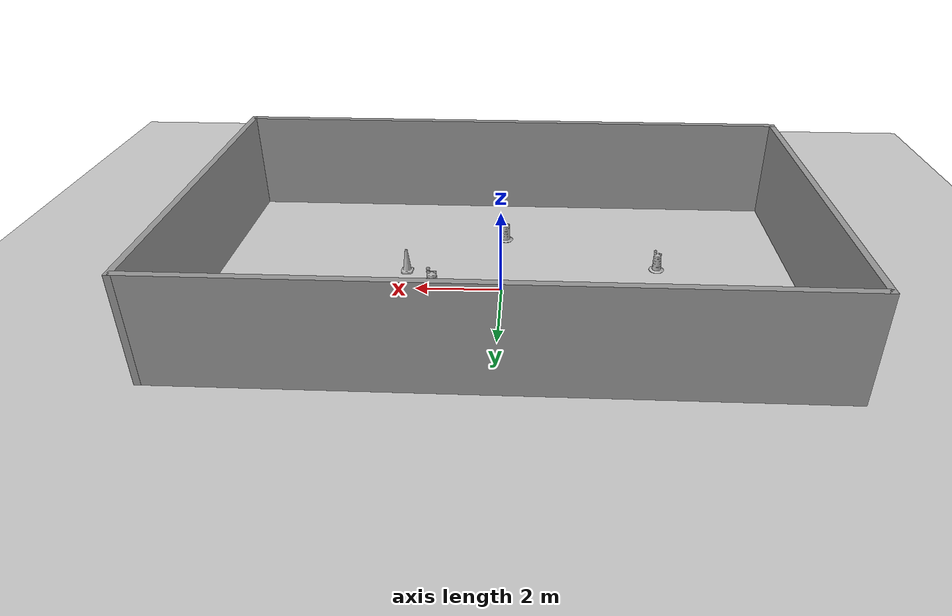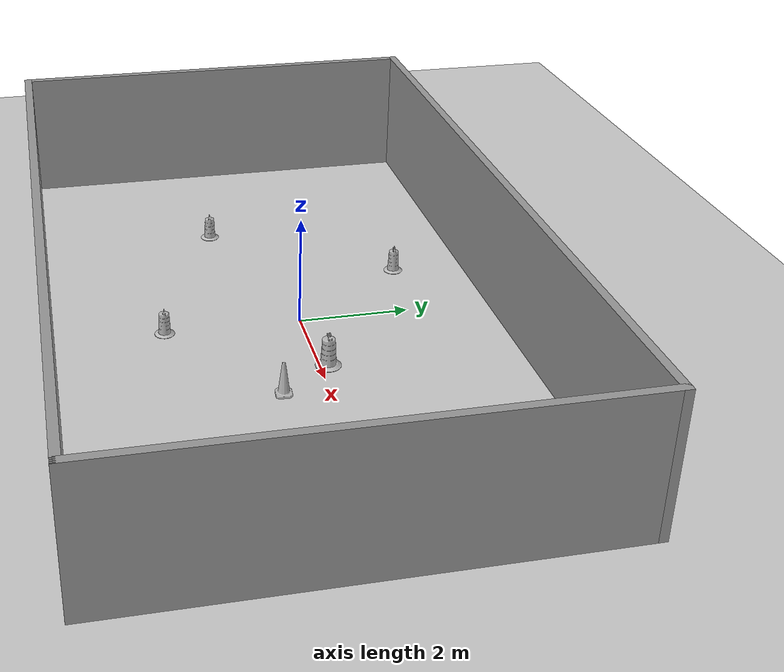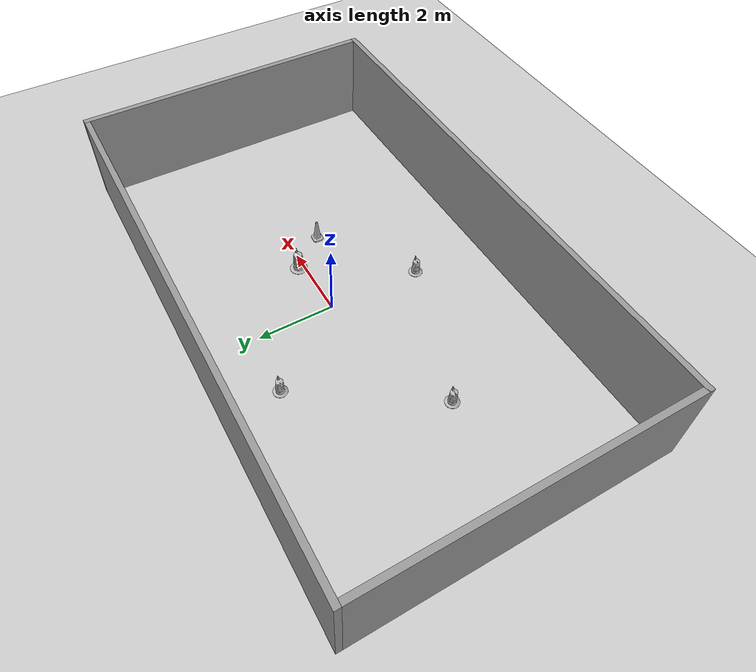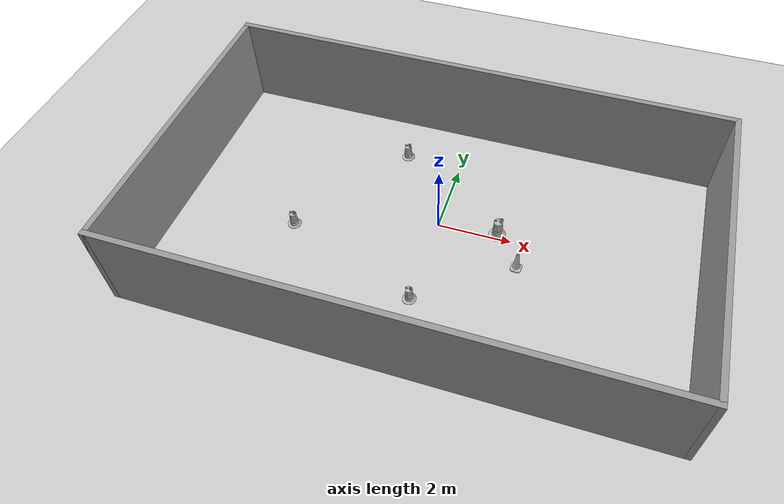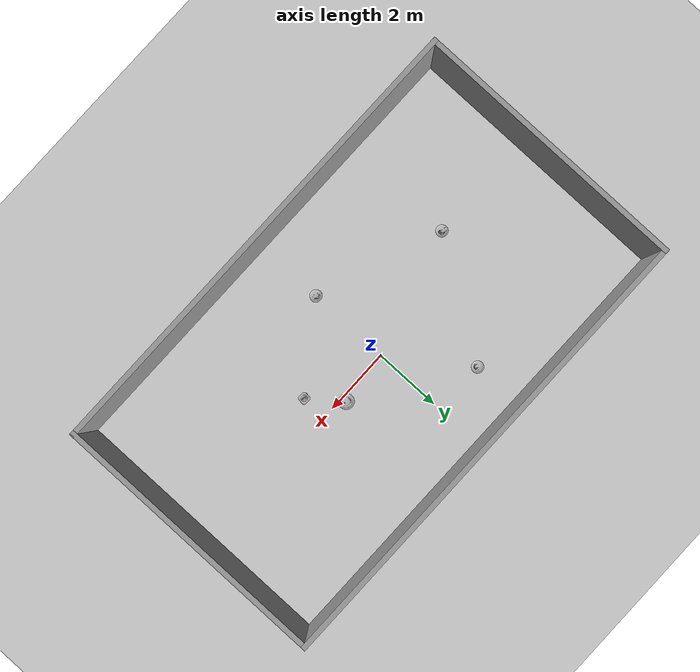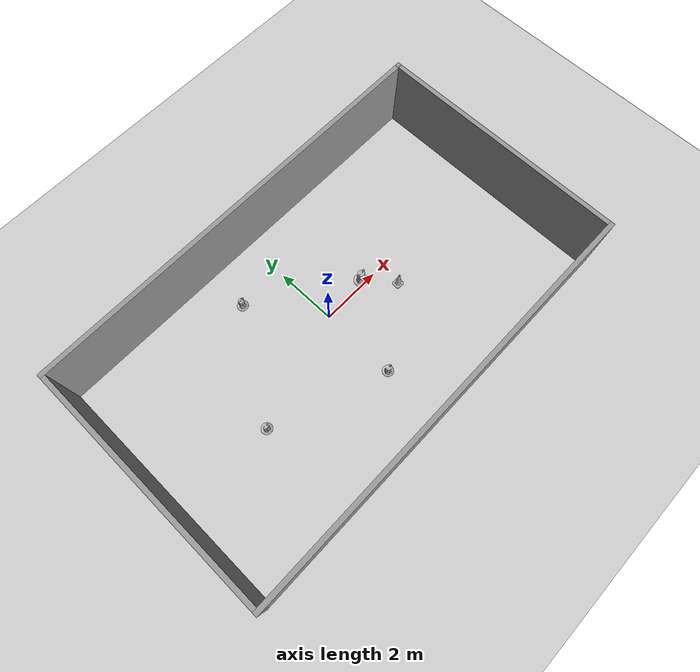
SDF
<sdf version="1.7">
 <world name="default">
  <light name="sun" type="directional">
   <pose>0 0 10 0 -0 0</pose>
   <diffuse>0.8 0.8 0.8 1</diffuse>
   <specular>0.2 0.2 0.2 1</specular>
   <attenuation>
    <range>1000</range>
    <constant>0.9</constant>
    <linear>0.01</linear>
    <quadratic>0.001</quadratic>
   </attenuation>
   <direction>-0.5 0.1 -0.9</direction>
   <spot><inner_angle>0</inner_angle><outer_angle>0</outer_angle><falloff>0</falloff></spot>
  </light>
  <model name="ground_plane">
   <static>1</static>
   <link name="link">
    <collision name="collision">
     <geometry><plane><normal>0 0 1</normal><size>100 100</size></plane></geometry>
     <surface><friction><ode><mu>100</mu><mu2>50</mu2></ode></friction></surface>
    </collision>
    <visual name="visual">
     <cast_shadows>0</cast_shadows>
     <geometry><plane><normal>0 0 1</normal><size>100 100</size></plane></geometry>
     <material>
      <script><uri>file://media/materials/scripts/gazebo.material</uri><name>Gazebo/Grey</name></script>
     </material>
    </visual>
   </link>
  </model>
  <gravity>0 0 -9.8</gravity>
  <magnetic_field>6e-06 2.3e-05 -4.2e-05</magnetic_field>
  <atmosphere type="adiabatic"/>
  <physics type="ode">
   <max_step_size>0.001</max_step_size>
   <real_time_factor>1</real_time_factor>
   <real_time_update_rate>1000</real_time_update_rate>
  </physics>
  <scene><ambient>0.4 0.4 0.4 1</ambient><background>0.7 0.7 0.7 1</background><shadows>1</shadows></scene>
  <spherical_coordinates>
   <surface_model>EARTH_WGS84</surface_model>
   <latitude_deg>0</latitude_deg>
   <longitude_deg>0</longitude_deg>
   <elevation>0</elevation>
   <heading_deg>0</heading_deg>
  </spherical_coordinates>
  <model name="Construction Barrel">
   <link name="link">
    <inertial>
     <pose>0 0 0.4 0 -0 0</pose>
     <mass>500</mass>
     <inertia><ixx>51.2096</ixx><iyy>51.2096</iyy><izz>25</izz><ixy>0</ixy><ixz>0</ixz><iyz>0</iyz></inertia>
    </inertial>
    <collision name="collision">
     <geometry>
      <mesh>
       <uri>model://construction_barrel/meshes/construction_barrel.dae</uri>
       <scale>0.445151 0.445151 0.445151</scale>
      </mesh>
     </geometry>
    </collision>
    <visual name="visual">
     <geometry>
      <mesh>
       <uri>model://construction_barrel/meshes/construction_barrel.dae</uri>
       <scale>0.445151 0.445151 0.445151</scale>
      </mesh>
     </geometry>
    </visual>
   </link>
   <pose>1.58653 0.150528 -0 -4e-06 -2e-06 1.2e-05</pose>
  </model>
  <model name="Construction Barrel_0">
   <link name="link">
    <inertial>
     <pose>0 0 0.4 0 -0 0</pose>
     <mass>500</mass>
     <inertia><ixx>51.2096</ixx><iyy>51.2096</iyy><izz>25</izz><ixy>0</ixy><ixz>0</ixz><iyz>0</iyz></inertia>
    </inertial>
    <collision name="collision">
     <geometry>
      <mesh>
       <uri>model://construction_barrel/meshes/construction_barrel.dae</uri>
       <scale>0.352814 0.352814 0.352814</scale>
      </mesh>
     </geometry>
    </collision>
    <visual name="visual">
     <geometry>
      <mesh>
       <uri>model://construction_barrel/meshes/construction_barrel.dae</uri>
       <scale>0.352814 0.352814 0.352814</scale>
      </mesh>
     </geometry>
    </visual>
   </link>
   <pose>-0.010338 -2.46154 -0 0 0 -0.096346</pose>
  </model>
  <model name="Construction Cone_1">
   <link name="link">
    <collision name="collision">
     <geometry>
      <mesh>
       <scale>5.55373 5.55373 5.55373</scale>
       <uri>model://construction_cone/meshes/construction_cone.dae</uri>
      </mesh>
     </geometry>
    </collision>
    <visual name="visual">
     <geometry>
      <mesh>
       <scale>5.55373 5.55373 5.55373</scale>
       <uri>model://construction_cone/meshes/construction_cone.dae</uri>
      </mesh>
     </geometry>
    </visual>
    <inertial>
     <inertia><ixx>1</ixx><ixy>0</ixy><ixz>0</ixz><iyy>1</iyy><iyz>0</iyz><izz>1</izz></inertia>
     <mass>1</mass>
    </inertial>
   </link>
   <pose>2.3129 -0.773621 -9e-06 0 -1e-06 -0.067785</pose>
  </model>
  <model name="warehouse">
   <pose>-0.025 -0.43 0 0 -0 0</pose>
   <link name="Wall_0">
    <collision name="Wall_0_Collision">
     <geometry><box><size>14 0.15 2.5</size></box></geometry>
     <pose>0 0 1.25 0 -0 0</pose>
    </collision>
    <visual name="Wall_0_Visual">
     <pose>0 0 1.25 0 -0 0</pose>
     <geometry><box><size>14 0.15 2.5</size></box></geometry>
     <material>
      <script><uri>file://media/materials/scripts/gazebo.material</uri><name>Gazebo/Grey</name></script>
      <ambient>1 1 1 1</ambient>
     </material>
     <meta><layer>0</layer></meta>
    </visual>
    <pose>-0 -4.05 0 0 -0 0</pose>
   </link>
   <link name="Wall_1">
    <collision name="Wall_1_Collision">
     <geometry><box><size>8.25 0.15 2.5</size></box></geometry>
     <pose>0 0 1.25 0 -0 0</pose>
    </collision>
    <visual name="Wall_1_Visual">
     <pose>0 0 1.25 0 -0 0</pose>
     <geometry><box><size>8.25 0.15 2.5</size></box></geometry>
     <material>
      <script><uri>file://media/materials/scripts/gazebo.material</uri><name>Gazebo/Grey</name></script>
      <ambient>1 1 1 1</ambient>
     </material>
     <meta><layer>0</layer></meta>
    </visual>
    <pose>6.925 -0 0 0 -0 1.5708</pose>
   </link>
   <link name="Wall_2">
    <collision name="Wall_2_Collision">
     <geometry><box><size>14 0.15 2.5</size></box></geometry>
     <pose>0 0 1.25 0 -0 0</pose>
    </collision>
    <visual name="Wall_2_Visual">
     <pose>0 0 1.25 0 -0 0</pose>
     <geometry><box><size>14 0.15 2.5</size></box></geometry>
     <material>
      <script><uri>file://media/materials/scripts/gazebo.material</uri><name>Gazebo/Grey</name></script>
      <ambient>1 1 1 1</ambient>
     </material>
     <meta><layer>0</layer></meta>
    </visual>
    <pose>-0 4.05 0 0 -0 3.14159</pose>
   </link>
   <link name="Wall_3">
    <collision name="Wall_3_Collision">
     <geometry><box><size>8.25 0.15 2.5</size></box></geometry>
     <pose>0 0 1.25 0 -0 0</pose>
    </collision>
    <visual name="Wall_3_Visual">
     <pose>0 0 1.25 0 -0 0</pose>
     <geometry><box><size>8.25 0.15 2.5</size></box></geometry>
     <material>
      <script><uri>file://media/materials/scripts/gazebo.material</uri><name>Gazebo/Grey</name></script>
      <ambient>1 1 1 1</ambient>
     </material>
     <meta><layer>0</layer></meta>
    </visual>
    <pose>-6.925 -0 0 0 -0 -1.5708</pose>
   </link>
   <static>1</static>
  </model>
  <model name="Construction Barrel_0_clone">
   <link name="link">
    <inertial>
     <pose>0 0 0.4 0 -0 0</pose>
     <mass>500</mass>
     <inertia><ixx>51.2096</ixx><iyy>51.2096</iyy><izz>25</izz><ixy>0</ixy><ixz>0</ixz><iyz>0</iyz></inertia>
    </inertial>
    <collision name="collision">
     <geometry>
      <mesh>
       <uri>model://construction_barrel/meshes/construction_barrel.dae</uri>
       <scale>0.352814 0.352814 0.352814</scale>
      </mesh>
     </geometry>
    </collision>
    <visual name="visual">
     <geometry>
      <mesh>
       <uri>model://construction_barrel/meshes/construction_barrel.dae</uri>
       <scale>0.352814 0.352814 0.352814</scale>
      </mesh>
     </geometry>
    </visual>
   </link>
   <pose>-3.71671 -1.09293 -0 0 -0 -0.096555</pose>
  </model>
  <model name="Construction Barrel_0_clone_0">
   <link name="link">
    <inertial>
     <pose>0 0 0.4 0 -0 0</pose>
     <mass>500</mass>
     <inertia><ixx>51.2096</ixx><iyy>51.2096</iyy><izz>25</izz><ixy>0</ixy><ixz>0</ixz><iyz>0</iyz></inertia>
    </inertial>
    <collision name="collision">
     <geometry>
      <mesh>
       <uri>model://construction_barrel/meshes/construction_barrel.dae</uri>
       <scale>0.352814 0.352814 0.352814</scale>
      </mesh>
     </geometry>
    </collision>
    <visual name="visual">
     <geometry>
      <mesh>
       <uri>model://construction_barrel/meshes/construction_barrel.dae</uri>
       <scale>0.352814 0.352814 0.352814</scale>
      </mesh>
     </geometry>
    </visual>
   </link>
   <pose>-1.57962 2.19414 0 0 -1e-06 -0.096405</pose>
  </model>
 </world>
</sdf>
